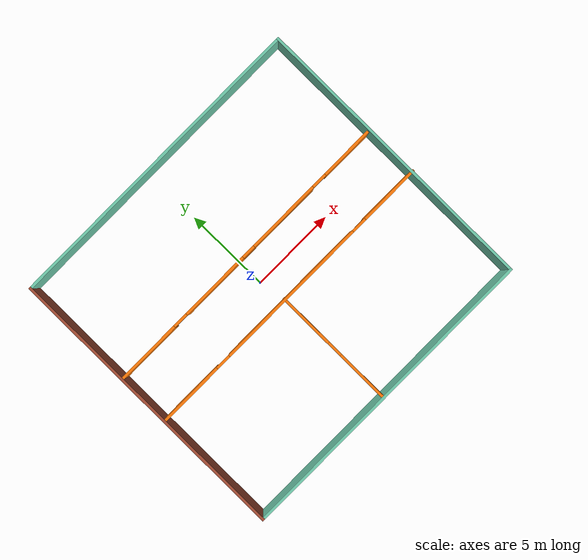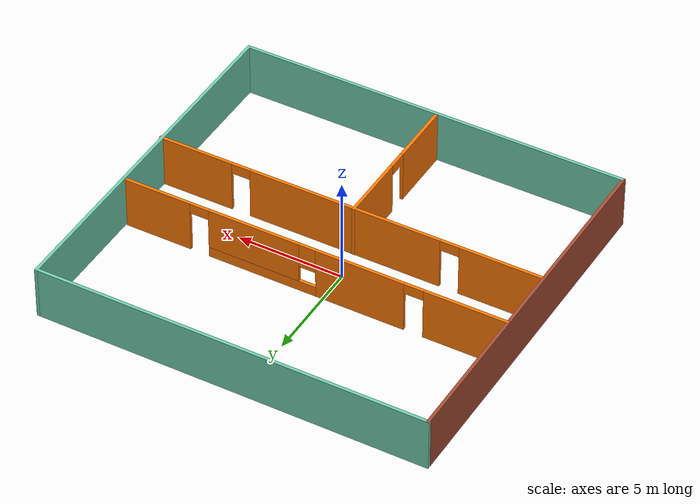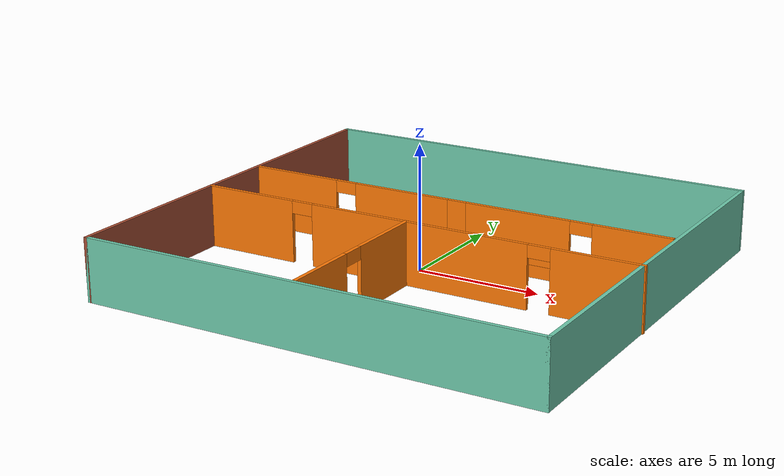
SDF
<?xml version='1.0'?>
<sdf version='1.6'>
  <model name='Building'>
    <pose frame=''>0.564286 -0.253162 0 0 -0 0</pose>
    <link name='Wall_33'>
      <collision name='Wall_33_Collision'>
        <geometry>
          <box>
            <size>17.25 0.15 2.5</size>
          </box>
        </geometry>
        <pose frame=''>0 0 1.25 0 -0 0</pose>
      </collision>
      <visual name='Wall_33_Visual'>
        <pose frame=''>0 0 1.25 0 -0 0</pose>
        <geometry>
          <box>
            <size>17.25 0.15 2.5</size>
          </box>
        </geometry>
        <material>
          <script>
            <uri>file://media/materials/scripts/gazebo.material</uri>
            <name>Gazebo/Bricks</name>
          </script>
          <ambient>0.435294 0.796078 0.67451 1</ambient>
        </material>
        <meta>
          <layer>0</layer>
        </meta>
      </visual>
      <pose frame=''>-9.2009 0 0 0 0 -1.5708</pose>
    </link>
    <link name='Wall_34'>
      <collision name='Wall_34_Collision'>
        <geometry>
          <box>
            <size>18.5 0.15 2.5</size>
          </box>
        </geometry>
        <pose frame=''>0 0 1.25 0 -0 0</pose>
      </collision>
      <visual name='Wall_34_Visual'>
        <pose frame=''>0 0 1.25 0 -0 0</pose>
        <geometry>
          <box>
            <size>18.5 0.15 2.5</size>
          </box>
        </geometry>
        <material>
          <script>
            <uri>file://media/materials/scripts/gazebo.material</uri>
            <name>Gazebo/Grey</name>
          </script>
          <ambient>0.435294 0.796078 0.67451 1</ambient>
        </material>
        <meta>
          <layer>0</layer>
        </meta>
      </visual>
      <pose frame=''>-0.025898 -8.55 0 0 -0 0</pose>
    </link>
    <link name='Wall_35'>
      <collision name='Wall_35_Collision'>
        <geometry>
          <box>
            <size>17.25 0.15 2.5</size>
          </box>
        </geometry>
        <pose frame=''>0 0 1.25 0 -0 0</pose>
      </collision>
      <visual name='Wall_35_Visual'>
        <pose frame=''>0 0 1.25 0 -0 0</pose>
        <geometry>
          <box>
            <size>17.25 0.15 2.5</size>
          </box>
        </geometry>
        <material>
          <script>
            <uri>file://media/materials/scripts/gazebo.material</uri>
            <name>Gazebo/Grey</name>
          </script>
          <ambient>0.435294 0.796078 0.67451 1</ambient>
        </material>
        <meta>
          <layer>0</layer>
        </meta>
      </visual>
      <pose frame=''>9.1491 0 0 0 -0 1.5708</pose>
    </link>
    <link name='Wall_36'>
      <collision name='Wall_36_Collision'>
        <geometry>
          <box>
            <size>18.5 0.15 2.5</size>
          </box>
        </geometry>
        <pose frame=''>0 0 1.25 0 -0 0</pose>
      </collision>
      <visual name='Wall_36_Visual'>
        <pose frame=''>0 0 1.25 0 -0 0</pose>
        <geometry>
          <box>
            <size>18.5 0.15 2.5</size>
          </box>
        </geometry>
        <material>
          <script>
            <uri>file://media/materials/scripts/gazebo.material</uri>
            <name>Gazebo/Grey</name>
          </script>
          <ambient>0.435294 0.796078 0.67451 1</ambient>
        </material>
        <meta>
          <layer>0</layer>
        </meta>
      </visual>
      <pose frame=''>-0.025898 8.55 0 0 -0 3.14159</pose>
    </link>
    <link name='Wall_38'>
      <pose frame=''>-0.099102 1.81154 0 0 -0 0</pose>
      <visual name='Wall_38_Visual_0'>
        <pose frame=''>-7.16636 0 1.25 0 -0 0</pose>
        <geometry>
          <box>
            <size>3.91728 0.15 2.5</size>
          </box>
        </geometry>
        <material>
          <script>
            <uri>file://media/materials/scripts/gazebo.material</uri>
            <name>Gazebo/Grey</name>
          </script>
          <ambient>0.996078 0.47451 0.0196078 1</ambient>
        </material>
        <meta>
          <layer>0</layer>
        </meta>
      </visual>
      <collision name='Wall_38_Collision_0'>
        <geometry>
          <box>
            <size>3.91728 0.15 2.5</size>
          </box>
        </geometry>
        <pose frame=''>-7.16636 0 1.25 0 -0 0</pose>
      </collision>
      <visual name='Wall_38_Visual_1'>
        <pose frame=''>-2.21534 0 1.25 0 -0 0</pose>
        <geometry>
          <box>
            <size>4.18476 0.15 2.5</size>
          </box>
        </geometry>
        <material>
          <script>
            <uri>file://media/materials/scripts/gazebo.material</uri>
            <name>Gazebo/Grey</name>
          </script>
          <ambient>0.996078 0.47451 0.0196078 1</ambient>
        </material>
        <meta>
          <layer>0</layer>
        </meta>
      </visual>
      <collision name='Wall_38_Collision_1'>
        <geometry>
          <box>
            <size>4.18476 0.15 2.5</size>
          </box>
        </geometry>
        <pose frame=''>-2.21534 0 1.25 0 -0 0</pose>
      </collision>
      <visual name='Wall_38_Visual_2'>
        <pose frame=''>7.53751 0 1.25 0 -0 0</pose>
        <geometry>
          <box>
            <size>3.17499 0.15 2.5</size>
          </box>
        </geometry>
        <material>
          <script>
            <uri>file://media/materials/scripts/gazebo.material</uri>
            <name>Gazebo/Grey</name>
          </script>
          <ambient>0.996078 0.47451 0.0196078 1</ambient>
        </material>
        <meta>
          <layer>0</layer>
        </meta>
      </visual>
      <collision name='Wall_38_Collision_2'>
        <geometry>
          <box>
            <size>3.17499 0.15 2.5</size>
          </box>
        </geometry>
        <pose frame=''>7.53751 0 1.25 0 -0 0</pose>
      </collision>
      <visual name='Wall_38_Visual_3'>
        <pose frame=''>2.46352 0 0.25 0 -0 0</pose>
        <geometry>
          <box>
            <size>5.17297 0.15 0.5</size>
          </box>
        </geometry>
        <material>
          <script>
            <uri>file://media/materials/scripts/gazebo.material</uri>
            <name>Gazebo/Grey</name>
          </script>
          <ambient>0.996078 0.47451 0.0196078 1</ambient>
        </material>
        <meta>
          <layer>0</layer>
        </meta>
      </visual>
      <collision name='Wall_38_Collision_3'>
        <geometry>
          <box>
            <size>5.17297 0.15 0.5</size>
          </box>
        </geometry>
        <pose frame=''>2.46352 0 0.25 0 -0 0</pose>
      </collision>
      <visual name='Wall_38_Visual_4'>
        <pose frame=''>2.86352 0 1.5 0 -0 0</pose>
        <geometry>
          <box>
            <size>4.37297 0.15 2</size>
          </box>
        </geometry>
        <material>
          <script>
            <uri>file://media/materials/scripts/gazebo.material</uri>
            <name>Gazebo/Grey</name>
          </script>
          <ambient>0.996078 0.47451 0.0196078 1</ambient>
        </material>
        <meta>
          <layer>0</layer>
        </meta>
      </visual>
      <collision name='Wall_38_Collision_4'>
        <geometry>
          <box>
            <size>4.37297 0.15 2</size>
          </box>
        </geometry>
        <pose frame=''>2.86352 0 1.5 0 -0 0</pose>
      </collision>
      <visual name='Wall_38_Visual_5'>
        <pose frame=''>0.277038 0 1.9 0 -0 0</pose>
        <geometry>
          <box>
            <size>0.8 0.15 1.2</size>
          </box>
        </geometry>
        <material>
          <script>
            <uri>file://media/materials/scripts/gazebo.material</uri>
            <name>Gazebo/Grey</name>
          </script>
          <ambient>0.996078 0.47451 0.0196078 1</ambient>
        </material>
        <meta>
          <layer>0</layer>
        </meta>
      </visual>
      <collision name='Wall_38_Collision_5'>
        <geometry>
          <box>
            <size>0.8 0.15 1.2</size>
          </box>
        </geometry>
        <pose frame=''>0.277038 0 1.9 0 -0 0</pose>
      </collision>
      <visual name='Wall_38_Visual_6'>
        <pose frame=''>-4.75772 0 2.25 0 -0 0</pose>
        <geometry>
          <box>
            <size>0.9 0.15 0.5</size>
          </box>
        </geometry>
        <material>
          <script>
            <uri>file://media/materials/scripts/gazebo.material</uri>
            <name>Gazebo/Grey</name>
          </script>
          <ambient>0.996078 0.47451 0.0196078 1</ambient>
        </material>
        <meta>
          <layer>0</layer>
        </meta>
      </visual>
      <collision name='Wall_38_Collision_6'>
        <geometry>
          <box>
            <size>0.9 0.15 0.5</size>
          </box>
        </geometry>
        <pose frame=''>-4.75772 0 2.25 0 -0 0</pose>
      </collision>
      <visual name='Wall_38_Visual_7'>
        <pose frame=''>5.50001 0 2.25 0 -0 0</pose>
        <geometry>
          <box>
            <size>0.9 0.15 0.5</size>
          </box>
        </geometry>
        <material>
          <script>
            <uri>file://media/materials/scripts/gazebo.material</uri>
            <name>Gazebo/Grey</name>
          </script>
          <ambient>0.996078 0.47451 0.0196078 1</ambient>
        </material>
        <meta>
          <layer>0</layer>
        </meta>
      </visual>
      <collision name='Wall_38_Collision_7'>
        <geometry>
          <box>
            <size>0.9 0.15 0.5</size>
          </box>
        </geometry>
        <pose frame=''>5.50001 0 2.25 0 -0 0</pose>
      </collision>
    </link>
    <link name='Wall_40'>
      <pose frame=''>0.025898 -1.30177 0 0 -0 0</pose>
      <visual name='Wall_40_Visual_0'>
        <pose frame=''>-7.28025 0 1.25 0 -0 0</pose>
        <geometry>
          <box>
            <size>3.9395 0.15 2.5</size>
          </box>
        </geometry>
        <material>
          <script>
            <uri>file://media/materials/scripts/gazebo.material</uri>
            <name>Gazebo/Grey</name>
          </script>
          <ambient>0.996078 0.47451 0.0196078 1</ambient>
        </material>
        <meta>
          <layer>0</layer>
        </meta>
      </visual>
      <collision name='Wall_40_Collision_0'>
        <geometry>
          <box>
            <size>3.9395 0.15 2.5</size>
          </box>
        </geometry>
        <pose frame=''>-7.28025 0 1.25 0 -0 0</pose>
      </collision>
      <visual name='Wall_40_Visual_1'>
        <pose frame=''>0.170064 0 1.25 0 -0 0</pose>
        <geometry>
          <box>
            <size>9.16113 0.15 2.5</size>
          </box>
        </geometry>
        <material>
          <script>
            <uri>file://media/materials/scripts/gazebo.material</uri>
            <name>Gazebo/Grey</name>
          </script>
          <ambient>0.996078 0.47451 0.0196078 1</ambient>
        </material>
        <meta>
          <layer>0</layer>
        </meta>
      </visual>
      <collision name='Wall_40_Collision_1'>
        <geometry>
          <box>
            <size>9.16113 0.15 2.5</size>
          </box>
        </geometry>
        <pose frame=''>0.170064 0 1.25 0 -0 0</pose>
      </collision>
      <visual name='Wall_40_Visual_2'>
        <pose frame=''>7.45031 0 1.25 0 -0 0</pose>
        <geometry>
          <box>
            <size>3.59937 0.15 2.5</size>
          </box>
        </geometry>
        <material>
          <script>
            <uri>file://media/materials/scripts/gazebo.material</uri>
            <name>Gazebo/Grey</name>
          </script>
          <ambient>0.996078 0.47451 0.0196078 1</ambient>
        </material>
        <meta>
          <layer>0</layer>
        </meta>
      </visual>
      <collision name='Wall_40_Collision_2'>
        <geometry>
          <box>
            <size>3.59937 0.15 2.5</size>
          </box>
        </geometry>
        <pose frame=''>7.45031 0 1.25 0 -0 0</pose>
      </collision>
      <visual name='Wall_40_Visual_3'>
        <pose frame=''>-4.8605 0 2.25 0 -0 0</pose>
        <geometry>
          <box>
            <size>0.9 0.15 0.5</size>
          </box>
        </geometry>
        <material>
          <script>
            <uri>file://media/materials/scripts/gazebo.material</uri>
            <name>Gazebo/Grey</name>
          </script>
          <ambient>0.996078 0.47451 0.0196078 1</ambient>
        </material>
        <meta>
          <layer>0</layer>
        </meta>
      </visual>
      <collision name='Wall_40_Collision_3'>
        <geometry>
          <box>
            <size>0.9 0.15 0.5</size>
          </box>
        </geometry>
        <pose frame=''>-4.8605 0 2.25 0 -0 0</pose>
      </collision>
      <visual name='Wall_40_Visual_4'>
        <pose frame=''>5.20063 0 2.25 0 -0 0</pose>
        <geometry>
          <box>
            <size>0.9 0.15 0.5</size>
          </box>
        </geometry>
        <material>
          <script>
            <uri>file://media/materials/scripts/gazebo.material</uri>
            <name>Gazebo/Grey</name>
          </script>
          <ambient>0.996078 0.47451 0.0196078 1</ambient>
        </material>
        <meta>
          <layer>0</layer>
        </meta>
      </visual>
      <collision name='Wall_40_Collision_4'>
        <geometry>
          <box>
            <size>0.9 0.15 0.5</size>
          </box>
        </geometry>
        <pose frame=''>5.20063 0 2.25 0 -0 0</pose>
      </collision>
    </link>
    <link name='Wall_44'>
      <pose frame=''>-0.261362 -4.83668 0 0 0 -1.5708</pose>
      <visual name='Wall_44_Visual_0'>
        <pose frame=''>-1.9832 0 1.25 0 -0 0</pose>
        <geometry>
          <box>
            <size>3.28359 0.15 2.5</size>
          </box>
        </geometry>
        <material>
          <script>
            <uri>file://media/materials/scripts/gazebo.material</uri>
            <name>Gazebo/Grey</name>
          </script>
          <ambient>0.996078 0.47451 0.0196078 1</ambient>
        </material>
        <meta>
          <layer>0</layer>
        </meta>
      </visual>
      <collision name='Wall_44_Collision_0'>
        <geometry>
          <box>
            <size>3.28359 0.15 2.5</size>
          </box>
        </geometry>
        <pose frame=''>-1.9832 0 1.25 0 -0 0</pose>
      </collision>
      <visual name='Wall_44_Visual_1'>
        <pose frame=''>2.0918 0 1.25 0 -0 0</pose>
        <geometry>
          <box>
            <size>3.06641 0.15 2.5</size>
          </box>
        </geometry>
        <material>
          <script>
            <uri>file://media/materials/scripts/gazebo.material</uri>
            <name>Gazebo/Grey</name>
          </script>
          <ambient>0.996078 0.47451 0.0196078 1</ambient>
        </material>
        <meta>
          <layer>0</layer>
        </meta>
      </visual>
      <collision name='Wall_44_Collision_1'>
        <geometry>
          <box>
            <size>3.06641 0.15 2.5</size>
          </box>
        </geometry>
        <pose frame=''>2.0918 0 1.25 0 -0 0</pose>
      </collision>
      <visual name='Wall_44_Visual_2'>
        <pose frame=''>0.108592 0 2.25 0 -0 0</pose>
        <geometry>
          <box>
            <size>0.9 0.15 0.5</size>
          </box>
        </geometry>
        <material>
          <script>
            <uri>file://media/materials/scripts/gazebo.material</uri>
            <name>Gazebo/Grey</name>
          </script>
          <ambient>0.996078 0.47451 0.0196078 1</ambient>
        </material>
        <meta>
          <layer>0</layer>
        </meta>
      </visual>
      <collision name='Wall_44_Collision_2'>
        <geometry>
          <box>
            <size>0.9 0.15 0.5</size>
          </box>
        </geometry>
        <pose frame=''>0.108592 0 2.25 0 -0 0</pose>
      </collision>
    </link>
    <static>1</static>
  </model>
</sdf>
